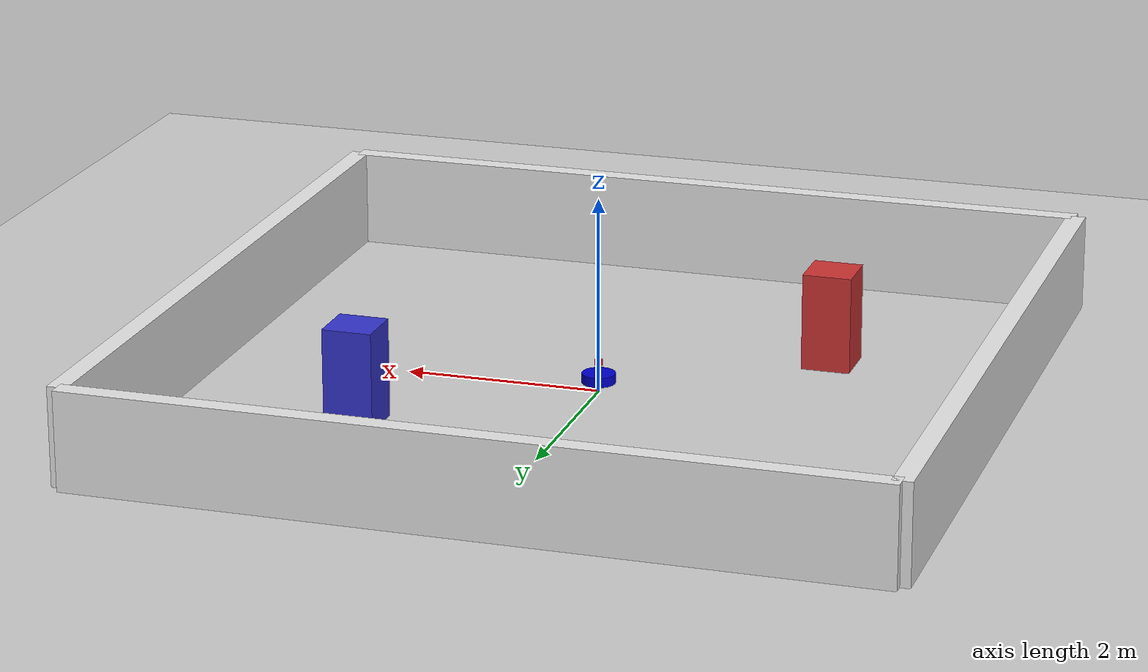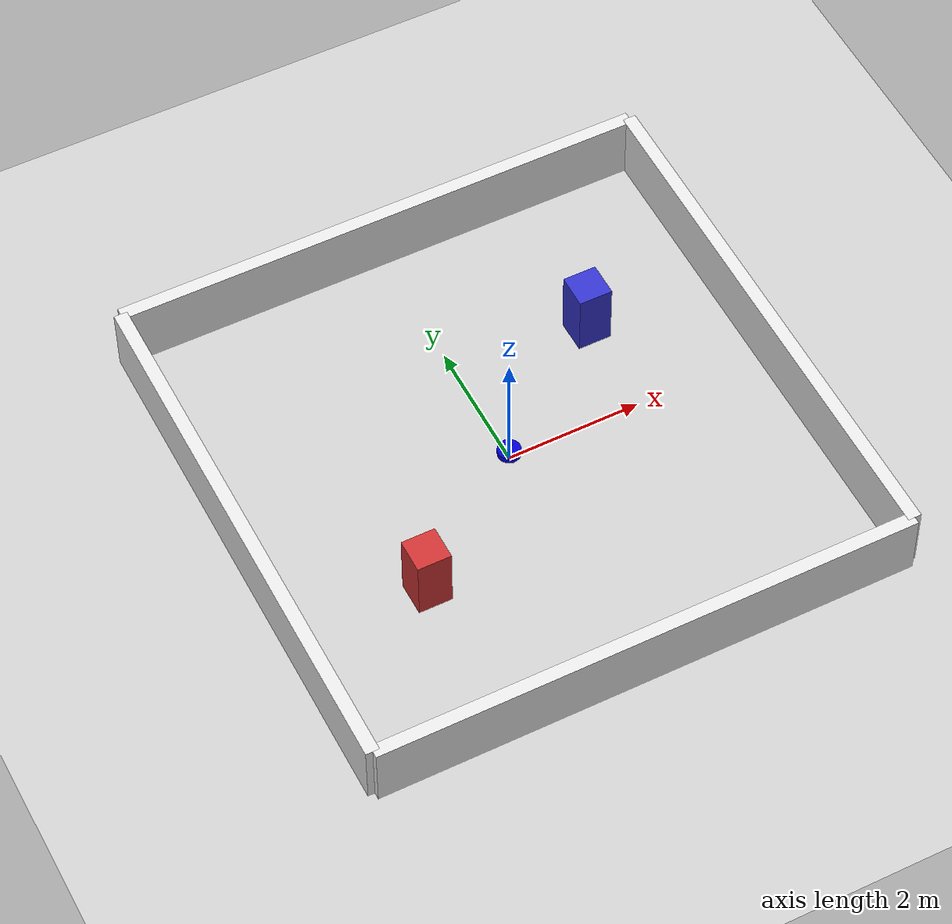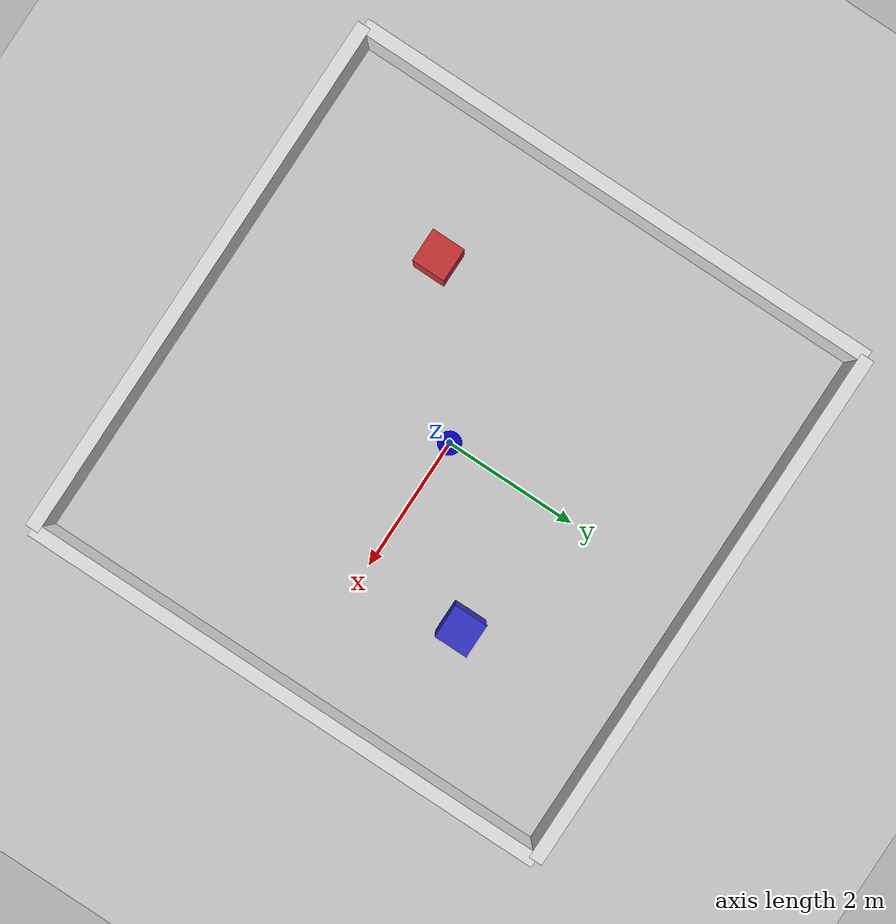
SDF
<?xml version="1.0" ?>
<sdf version="1.8">
  <world name="camera">

    <physics name="1ms" type="ignored">
      <max_step_size>0.001</max_step_size>
      <real_time_factor>1.0</real_time_factor>
    </physics>

    <plugin filename="gz-sim-physics-system" name="gz::sim::systems::Physics"/>
    <plugin filename="gz-sim-sensors-system" name="gz::sim::systems::Sensors">
      <render_engine>ogre2</render_engine>
    </plugin>
    <plugin filename="gz-sim-scene-broadcaster-system" name="gz::sim::systems::SceneBroadcaster"/>
    <plugin filename="gz-sim-user-commands-system" name="gz::sim::systems::UserCommands"/>

    <light name="sun" type="directional">
      <cast_shadows>true</cast_shadows>
      <pose>0 0 10 0 0 0</pose>
      <diffuse>0.8 0.8 0.8 1</diffuse>
      <specular>0.2 0.2 0.2 1</specular>
      <attenuation><range>1000</range><constant>0.9</constant><linear>0.01</linear><quadratic>0.001</quadratic></attenuation>
      <direction>-0.5 0.1 -0.9</direction>
    </light>

    <model name="ground_plane">
      <static>true</static>
      <link name="link">
        <collision name="collision"><geometry><plane><normal>0 0 1</normal><size>20 20</size></plane></geometry></collision>
        <visual name="visual"><geometry><plane><normal>0 0 1</normal><size>20 20</size></plane></geometry><material><ambient>0.8 0.8 0.8 1</ambient></material></visual>
      </link>
    </model>

    <model name="perete_nord"><static>true</static><pose>0 4 0.5 0 0 0</pose>
      <link name="link">
        <collision name="collision"><geometry><box><size>8 0.2 1</size></box></geometry></collision>
        <visual name="visual"><geometry><box><size>8 0.2 1</size></box></geometry><material><ambient>0.9 0.9 0.9 1</ambient></material></visual>
      </link>
    </model>

    <model name="perete_sud"><static>true</static><pose>0 -4 0.5 0 0 0</pose>
      <link name="link">
        <collision name="collision"><geometry><box><size>8 0.2 1</size></box></geometry></collision>
        <visual name="visual"><geometry><box><size>8 0.2 1</size></box></geometry><material><ambient>0.9 0.9 0.9 1</ambient></material></visual>
      </link>
    </model>

    <model name="perete_est"><static>true</static><pose>4 0 0.5 0 0 0</pose>
      <link name="link">
        <collision name="collision"><geometry><box><size>0.2 8 1</size></box></geometry></collision>
        <visual name="visual"><geometry><box><size>0.2 8 1</size></box></geometry><material><ambient>0.9 0.9 0.9 1</ambient></material></visual>
      </link>
    </model>

    <model name="perete_vest"><static>true</static><pose>-4 0 0.5 0 0 0</pose>
      <link name="link">
        <collision name="collision"><geometry><box><size>0.2 8 1</size></box></geometry></collision>
        <visual name="visual"><geometry><box><size>0.2 8 1</size></box></geometry><material><ambient>0.9 0.9 0.9 1</ambient></material></visual>
      </link>
    </model>

    <model name="obstacol_1"><static>true</static><pose>2 1.5 0.5 0 0 0</pose>
      <link name="link">
        <collision name="collision"><geometry><box><size>0.5 0.5 1</size></box></geometry></collision>
        <visual name="visual"><geometry><box><size>0.5 0.5 1</size></box></geometry><material><ambient>0.2 0.2 0.8 1</ambient></material></visual>
      </link>
    </model>

    <model name="obstacol_2"><static>true</static><pose>-2 -1.5 0.5 0 0 0</pose>
      <link name="link">
        <collision name="collision"><geometry><box><size>0.5 0.5 1</size></box></geometry></collision>
        <visual name="visual"><geometry><box><size>0.5 0.5 1</size></box></geometry><material><ambient>0.8 0.2 0.2 1</ambient></material></visual>
      </link>
    </model>

    <!-- ROBOT ASPIRATOR -->
    <model name="robot_aspirator">
      <pose>0 0 0.1 0 0 0</pose>

      <link name="base_link">
        <pose>0 0 0.05 0 0 0</pose>
        <inertial>
          <mass>1.5</mass>
          <inertia><ixx>0.01247</ixx><ixy>0</ixy><ixz>0</ixz><iyy>0.01247</iyy><iyz>0</iyz><izz>0.02168</izz></inertia>
        </inertial>
        <collision name="collision"><geometry><cylinder><radius>0.17</radius><length>0.1</length></cylinder></geometry></collision>
        <visual name="visual"><geometry><cylinder><radius>0.17</radius><length>0.1</length></cylinder></geometry><material><ambient>0 0 0.8 1</ambient></material></visual>
        <sensor name="imu_sensor" type="imu">
          <always_on>true</always_on><update_rate>100</update_rate><topic>/imu</topic>
          <imu>
            <angular_velocity>
              <x><noise type="gaussian"><mean>0</mean><stddev>0.009</stddev></noise></x>
              <y><noise type="gaussian"><mean>0</mean><stddev>0.009</stddev></noise></y>
              <z><noise type="gaussian"><mean>0</mean><stddev>0.009</stddev></noise></z>
            </angular_velocity>
            <linear_acceleration>
              <x><noise type="gaussian"><mean>0</mean><stddev>0.021</stddev></noise></x>
              <y><noise type="gaussian"><mean>0</mean><stddev>0.021</stddev></noise></y>
              <z><noise type="gaussian"><mean>0</mean><stddev>0.021</stddev></noise></z>
            </linear_acceleration>
          </imu>
        </sensor>
      </link>

      <link name="roata_stanga">
        <pose>0 0.12 0.0 1.5708 0 0</pose>
        <inertial><mass>0.1</mass><inertia><ixx>0.00008125</ixx><ixy>0</ixy><ixz>0</ixz><iyy>0.00008125</iyy><iyz>0</iyz><izz>0.000125</izz></inertia></inertial>
        <collision name="collision"><geometry><cylinder><radius>0.05</radius><length>0.04</length></cylinder></geometry></collision>
        <visual name="visual"><geometry><cylinder><radius>0.05</radius><length>0.04</length></cylinder></geometry><material><ambient>0.1 0.1 0.1 1</ambient></material></visual>
      </link>
      <joint name="motor_stanga" type="revolute">
        <parent>base_link</parent><child>roata_stanga</child>
        <axis><xyz>0 0 1</xyz><limit><lower>-1e16</lower><upper>1e16</upper></limit></axis>
      </joint>

      <link name="roata_dreapta">
        <pose>0 -0.12 0.0 1.5708 0 0</pose>
        <inertial><mass>0.1</mass><inertia><ixx>0.00008125</ixx><ixy>0</ixy><ixz>0</ixz><iyy>0.00008125</iyy><iyz>0</iyz><izz>0.000125</izz></inertia></inertial>
        <collision name="collision"><geometry><cylinder><radius>0.05</radius><length>0.04</length></cylinder></geometry></collision>
        <visual name="visual"><geometry><cylinder><radius>0.05</radius><length>0.04</length></cylinder></geometry><material><ambient>0.1 0.1 0.1 1</ambient></material></visual>
      </link>
      <joint name="motor_dreapta" type="revolute">
        <parent>base_link</parent><child>roata_dreapta</child>
        <axis><xyz>0 0 1</xyz><limit><lower>-1e16</lower><upper>1e16</upper></limit></axis>
      </joint>

      <link name="roata_sprijin">
        <pose>-0.13 0 0.025 0 0 0</pose>
        <inertial><mass>0.05</mass><inertia><ixx>0.0000125</ixx><ixy>0</ixy><ixz>0</ixz><iyy>0.0000125</iyy><iyz>0</iyz><izz>0.0000125</izz></inertia></inertial>
        <collision name="collision"><geometry><sphere><radius>0.025</radius></sphere></geometry></collision>
        <visual name="visual"><geometry><sphere><radius>0.025</radius></sphere></geometry><material><ambient>1 1 1 1</ambient></material></visual>
      </link>
      <joint name="prindere_sprijin" type="fixed"><parent>base_link</parent><child>roata_sprijin</child></joint>

      <link name="laser_frame">
        <pose>0 0 0.21 0 0 0</pose>
        <inertial><mass>0.17</mass><inertia><ixx>0.000099</ixx><ixy>0</ixy><ixz>0</ixz><iyy>0.000099</iyy><iyz>0</iyz><izz>0.000136</izz></inertia></inertial>
        <collision name="collision"><geometry><cylinder><radius>0.04</radius><length>0.06</length></cylinder></geometry></collision>
        <visual name="visual"><geometry><cylinder><radius>0.04</radius><length>0.06</length></cylinder></geometry><material><ambient>1 0 0 1</ambient></material></visual>
        <sensor name="lidar_sensor" type="gpu_lidar">
          <pose>0 0 0 0 0 0</pose>
          <visualize>true</visualize>
          <update_rate>10</update_rate>
          <topic>/scan</topic>
          <frame_id>laser_frame</frame_id>
          <lidar>
            <scan>
              <horizontal>
                <samples>360</samples><resolution>1</resolution>
                <min_angle>-3.14159</min_angle><max_angle>3.14159</max_angle>
              </horizontal>
            </scan>
            <range><min>0.15</min><max>12.0</max><resolution>0.01</resolution></range>
            <noise><type>gaussian</type><mean>0.0</mean><stddev>0.01</stddev></noise>
          </lidar>
        </sensor>
      </link>
      <joint name="laser_joint" type="fixed"><parent>base_link</parent><child>laser_frame</child></joint>

      <plugin filename="gz-sim-diff-drive-system" name="gz::sim::systems::DiffDrive">
        <left_joint>motor_stanga</left_joint>
        <right_joint>motor_dreapta</right_joint>
        <wheel_separation>0.24</wheel_separation>
        <wheel_radius>0.05</wheel_radius>
        <topic>/cmd_vel</topic>
        <odom_topic>/odom</odom_topic>
        <frame_id>odom</frame_id>
        <child_frame_id>base_link</child_frame_id>
        <odom_publish_frequency>30</odom_publish_frequency>
      </plugin>

      <plugin filename="gz-sim-joint-state-publisher-system" name="gz::sim::systems::JointStatePublisher">
        <joint_name>motor_stanga</joint_name>
        <joint_name>motor_dreapta</joint_name>
      </plugin>

    </model>

  </world>
</sdf>
